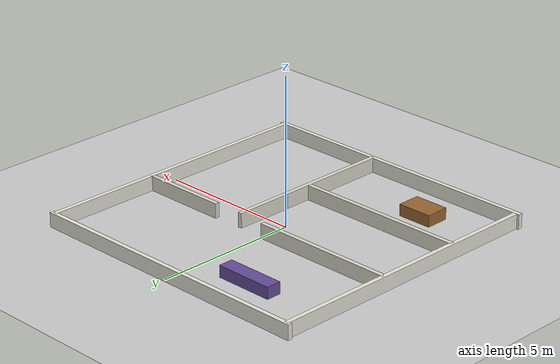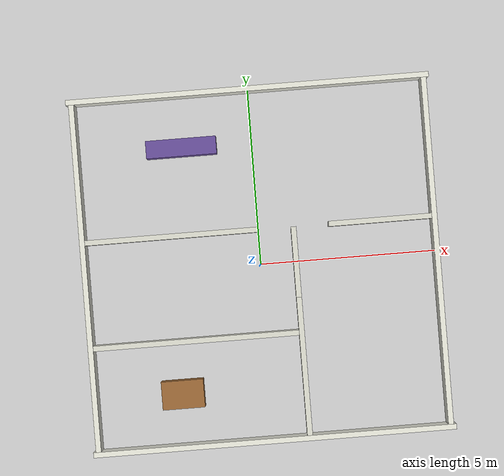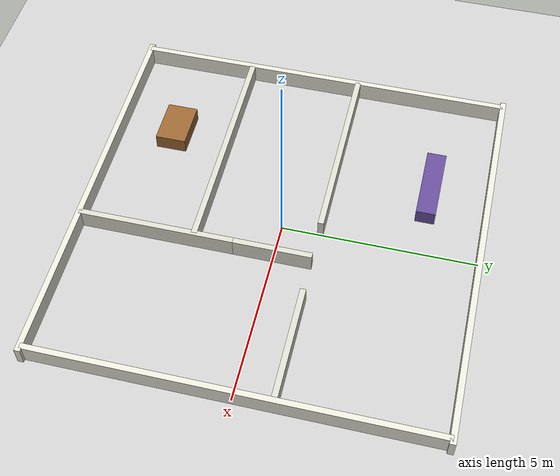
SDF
<?xml version="1.0" ?>
<sdf version="1.8">
  <world name="apartment">

    <!-- ── Physics ─────────────────────────────────────────────── -->
    <physics name="1ms" type="ignored">
      <max_step_size>0.001</max_step_size>
      <real_time_factor>1.0</real_time_factor>
    </physics>

    <!-- ── Plugins ─────────────────────────────────────────────── -->
    <plugin filename="gz-sim-physics-system"
            name="gz::sim::systems::Physics"/>
    <plugin filename="gz-sim-user-commands-system"
            name="gz::sim::systems::UserCommands"/>
    <plugin filename="gz-sim-scene-broadcaster-system"
            name="gz::sim::systems::SceneBroadcaster"/>
    <plugin filename="gz-sim-sensors-system"
            name="gz::sim::systems::Sensors">
      <render_engine>ogre2</render_engine>
    </plugin>
    <plugin filename="gz-sim-imu-system"
            name="gz::sim::systems::Imu"/>
    <plugin filename="gz-sim-contact-system"
            name="gz::sim::systems::Contact"/>

    <!-- ── Lighting ────────────────────────────────────────────── -->
    <light name="sun" type="directional">
      <cast_shadows>true</cast_shadows>
      <pose>0 0 10 0 0 0</pose>
      <diffuse>0.8 0.8 0.8 1</diffuse>
      <specular>0.2 0.2 0.2 1</specular>
      <direction>-0.5 0.1 -0.9</direction>
    </light>

    <!-- ── Ground plane ────────────────────────────────────────── -->
    <model name="ground_plane">
      <static>true</static>
      <link name="link">
        <collision name="collision">
          <geometry><plane><normal>0 0 1</normal></plane></geometry>
        </collision>
        <visual name="visual">
          <geometry><plane><normal>0 0 1</normal><size>50 50</size></plane></geometry>
          <material>
            <ambient>0.8 0.8 0.8 1</ambient>
            <diffuse>0.8 0.8 0.8 1</diffuse>
          </material>
        </visual>
      </link>
    </model>

    <!-- Helper macro: a static box wall -->
    <!-- OUTER WALLS -->

    <!-- South outer wall -->
    <model name="wall_south">
      <static>true</static>
      <pose>0 -5 0.25 0 0 0</pose>
      <link name="link">
        <collision name="col"><geometry><box><size>10.3 0.15 0.5</size></box></geometry></collision>
        <visual name="vis">
          <geometry><box><size>10.3 0.15 0.5</size></box></geometry>
          <material><ambient>0.9 0.9 0.85 1</ambient><diffuse>0.9 0.9 0.85 1</diffuse></material>
        </visual>
      </link>
    </model>

    <!-- North outer wall -->
    <model name="wall_north">
      <static>true</static>
      <pose>0 5 0.25 0 0 0</pose>
      <link name="link">
        <collision name="col"><geometry><box><size>10.3 0.15 0.5</size></box></geometry></collision>
        <visual name="vis">
          <geometry><box><size>10.3 0.15 0.5</size></box></geometry>
          <material><ambient>0.9 0.9 0.85 1</ambient><diffuse>0.9 0.9 0.85 1</diffuse></material>
        </visual>
      </link>
    </model>

    <!-- West outer wall -->
    <model name="wall_west">
      <static>true</static>
      <pose>-5 0 0.25 0 0 0</pose>
      <link name="link">
        <collision name="col"><geometry><box><size>0.15 10 0.5</size></box></geometry></collision>
        <visual name="vis">
          <geometry><box><size>0.15 10 0.5</size></box></geometry>
          <material><ambient>0.9 0.9 0.85 1</ambient><diffuse>0.9 0.9 0.85 1</diffuse></material>
        </visual>
      </link>
    </model>

    <!-- East outer wall -->
    <model name="wall_east">
      <static>true</static>
      <pose>5 0 0.25 0 0 0</pose>
      <link name="link">
        <collision name="col"><geometry><box><size>0.15 10 0.5</size></box></geometry></collision>
        <visual name="vis">
          <geometry><box><size>0.15 10 0.5</size></box></geometry>
          <material><ambient>0.9 0.9 0.85 1</ambient><diffuse>0.9 0.9 0.85 1</diffuse></material>
        </visual>
      </link>
    </model>

    <!-- INNER WALLS -->

    <!-- Wall dividing living room (north) from hallway+kitchen (south)
         Runs east-west at y=1, has a doorway gap on the left (west) side -->
    <!-- Left segment (west side, no doorway) -->
    <model name="inner_wall_1a">
      <static>true</static>
      <pose>-2.5 1 0.25 0 0 0</pose>
      <link name="link">
        <collision name="col"><geometry><box><size>5 0.15 0.5</size></box></geometry></collision>
        <visual name="vis">
          <geometry><box><size>5 0.15 0.5</size></box></geometry>
          <material><ambient>0.85 0.85 0.8 1</ambient><diffuse>0.85 0.85 0.8 1</diffuse></material>
        </visual>
      </link>
    </model>

    <!-- Right segment (east side, after doorway) -->
    <model name="inner_wall_1b">
      <static>true</static>
      <pose>3.5 1 0.25 0 0 0</pose>
      <link name="link">
        <collision name="col"><geometry><box><size>3 0.15 0.5</size></box></geometry></collision>
        <visual name="vis">
          <geometry><box><size>3 0.15 0.5</size></box></geometry>
          <material><ambient>0.85 0.85 0.8 1</ambient><diffuse>0.85 0.85 0.8 1</diffuse></material>
        </visual>
      </link>
    </model>
    <!-- Doorway gap between x=0 and x=1 at y=1 (1m wide door) -->

    <!-- Wall dividing hallway (west) from bedroom (east)
         Runs north-south at x=1, between y=1 and y=-2 -->
    <!-- Upper segment -->
    <model name="inner_wall_2a">
      <static>true</static>
      <pose>1 0 0.25 0 0 0</pose>
      <link name="link">
        <collision name="col"><geometry><box><size>0.15 2 0.5</size></box></geometry></collision>
        <visual name="vis">
          <geometry><box><size>0.15 2 0.5</size></box></geometry>
          <material><ambient>0.85 0.85 0.8 1</ambient><diffuse>0.85 0.85 0.8 1</diffuse></material>
        </visual>
      </link>
    </model>

    <!-- Lower segment (after doorway at y=-1.5) -->
    <model name="inner_wall_2b">
      <static>true</static>
      <pose>1 -3 0.25 0 0 0</pose>
      <link name="link">
        <collision name="col"><geometry><box><size>0.15 4 0.5</size></box></geometry></collision>
        <visual name="vis">
          <geometry><box><size>0.15 4 0.5</size></box></geometry>
          <material><ambient>0.85 0.85 0.8 1</ambient><diffuse>0.85 0.85 0.8 1</diffuse></material>
        </visual>
      </link>
    </model>
    <!-- Doorway gap between y=-1 and y=-2 at x=1 (1m wide door) -->

    <!-- Wall dividing hallway/kitchen (west) from bedroom bottom
         Runs east-west at y=-2, west side only -->
    <model name="inner_wall_3">
      <static>true</static>
      <pose>-2 -2 0.25 0 0 0</pose>
      <link name="link">
        <collision name="col"><geometry><box><size>6 0.15 0.5</size></box></geometry></collision>
        <visual name="vis">
          <geometry><box><size>6 0.15 0.5</size></box></geometry>
          <material><ambient>0.85 0.85 0.8 1</ambient><diffuse>0.85 0.85 0.8 1</diffuse></material>
        </visual>
      </link>
    </model>

    <!-- Small obstacle in living room (couch-like box) -->
    <model name="obstacle_couch">
      <static>true</static>
      <pose>-2 3.5 0.2 0 0 0</pose>
      <link name="link">
        <collision name="col"><geometry><box><size>2 0.5 0.4</size></box></geometry></collision>
        <visual name="vis">
          <geometry><box><size>2 0.5 0.4</size></box></geometry>
          <material><ambient>0.4 0.3 0.6 1</ambient><diffuse>0.4 0.3 0.6 1</diffuse></material>
        </visual>
      </link>
    </model>

    <!-- Small obstacle in kitchen (table-like box) -->
    <model name="obstacle_table">
      <static>true</static>
      <pose>-2.5 -3.5 0.2 0 0 0</pose>
      <link name="link">
        <collision name="col"><geometry><box><size>1.2 0.8 0.4</size></box></geometry></collision>
        <visual name="vis">
          <geometry><box><size>1.2 0.8 0.4</size></box></geometry>
          <material><ambient>0.6 0.4 0.2 1</ambient><diffuse>0.6 0.4 0.2 1</diffuse></material>
        </visual>
      </link>
    </model>

  </world>
</sdf>
